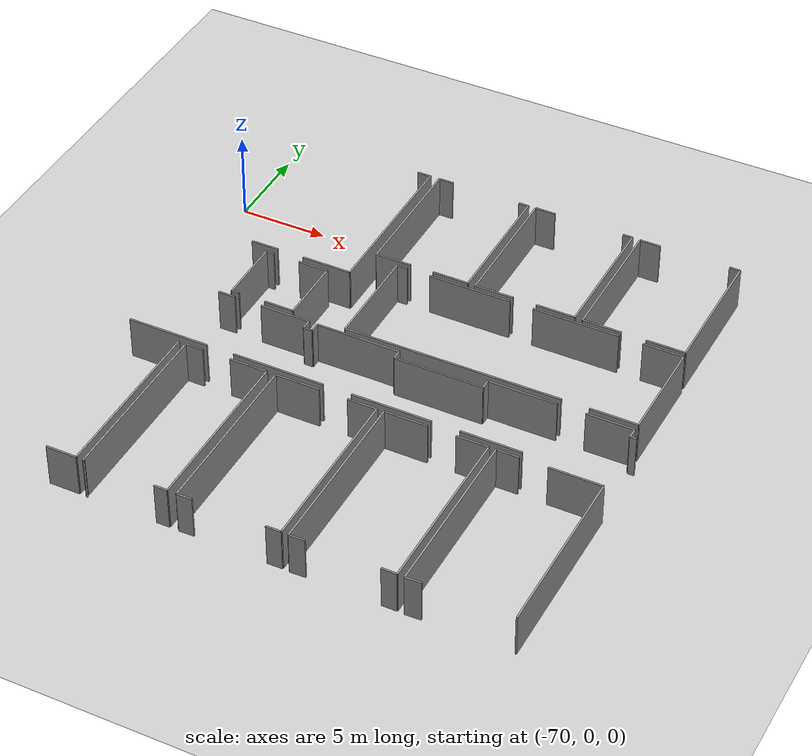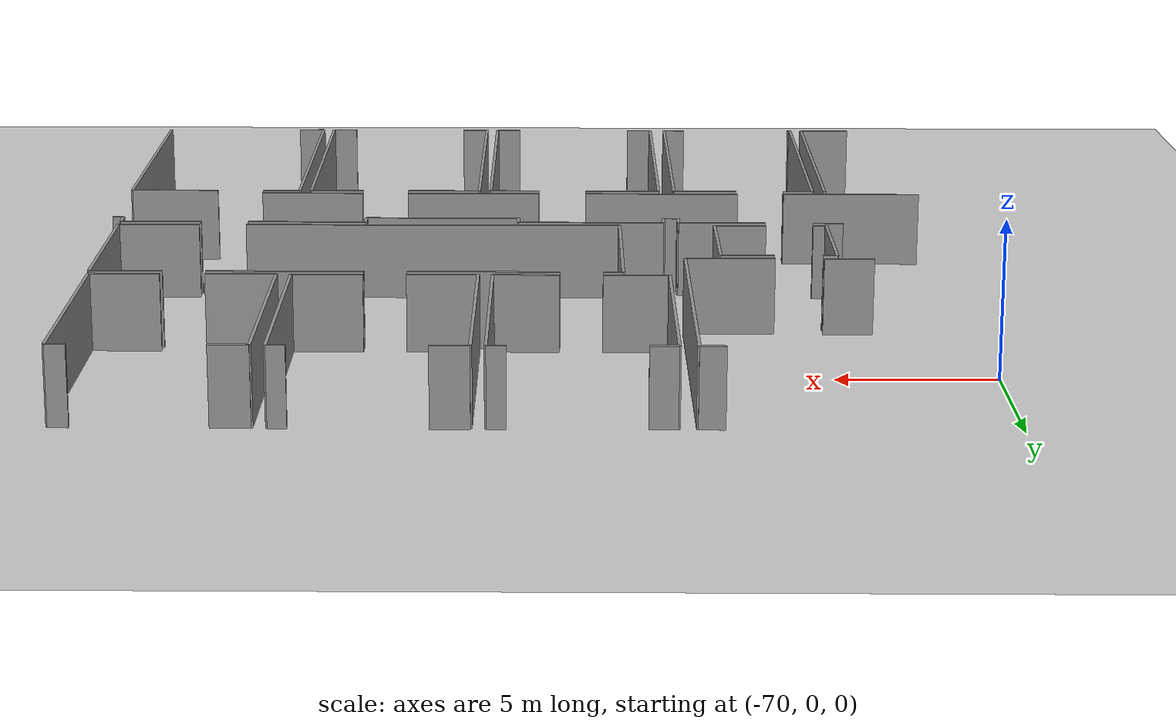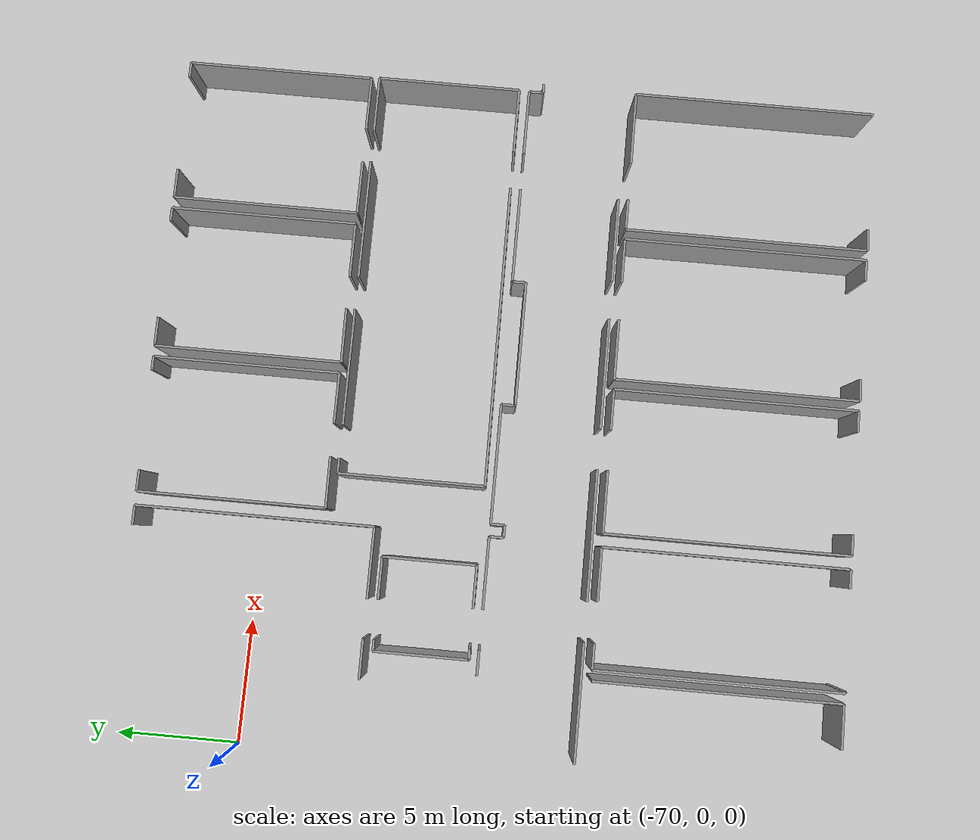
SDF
<sdf version="1.6">
 <world name="default">
  <model name="ground_plane">
   <static>1</static>
   <link name="link">
    <collision name="collision">
     <geometry><plane><normal>0 0 1</normal><size>100 100</size></plane></geometry>
     <surface><friction><ode><mu>100</mu><mu2>50</mu2></ode></friction></surface>
    </collision>
    <visual name="visual">
     <cast_shadows>0</cast_shadows>
     <geometry><plane><normal>0 0 1</normal><size>100 100</size></plane></geometry>
     <material>
      <script><uri>file://media/materials/scripts/gazebo.material</uri><name>Gazebo/Grey</name></script>
     </material>
    </visual>
   </link>
  </model>
  <model name="0510035341_A_40_1_103">
   <static>1</static>
   <link name="Wall_53">
    <collision name="Wall_53_Collision">
     <geometry><box><size>0.790552980763 0.1 2.5</size></box></geometry>
     <pose>0.395276490382 0 1.25 0 0 0</pose>
    </collision>
    <visual name="Wall_53_Visual">
     <pose>0.395276490382 0 1.25 0 0 0</pose>
     <geometry><box><size>0.790552980763 0.1 2.5</size></box></geometry>
     <material>
      <script><uri>file://media/materials/scripts/gazebo.material</uri><name>Gazebo/Grey</name></script>
      <ambient>1 1 1 1</ambient>
     </material>
    </visual>
    <pose>51.4413053139 -19.3100120627 0 0 0 0.0</pose>
   </link>
   <link name="Wall_54">
    <collision name="Wall_54_Collision">
     <geometry><box><size>9.67024315916 0.1 2.5</size></box></geometry>
     <pose>4.83512157958 0 1.25 0 0 0</pose>
    </collision>
    <visual name="Wall_54_Visual">
     <pose>4.83512157958 0 1.25 0 0 0</pose>
     <geometry><box><size>9.67024315916 0.1 2.5</size></box></geometry>
     <material>
      <script><uri>file://media/materials/scripts/gazebo.material</uri><name>Gazebo/Grey</name></script>
      <ambient>1 1 1 1</ambient>
     </material>
    </visual>
    <pose>52.2318582947 -19.3100120627 0 0 0 -1.57079632679</pose>
   </link>
   <link name="Wall_55">
    <collision name="Wall_55_Collision">
     <geometry><box><size>2.86534188306 0.1 2.5</size></box></geometry>
     <pose>1.43267094153 0 1.25 0 0 0</pose>
    </collision>
    <visual name="Wall_55_Visual">
     <pose>1.43267094153 0 1.25 0 0 0</pose>
     <geometry><box><size>2.86534188306 0.1 2.5</size></box></geometry>
     <material>
      <script><uri>file://media/materials/scripts/gazebo.material</uri><name>Gazebo/Grey</name></script>
      <ambient>1 1 1 1</ambient>
     </material>
    </visual>
    <pose>52.2318582947 -28.9802552219 0 0 0 3.14159265359</pose>
   </link>
   <link name="Wall_56">
    <collision name="Wall_56_Collision">
     <geometry><box><size>1.5940782343 0.1 2.5</size></box></geometry>
     <pose>0.797039117148 0 1.25 0 0 0</pose>
    </collision>
    <visual name="Wall_56_Visual">
     <pose>0.797039117148 0 1.25 0 0 0</pose>
     <geometry><box><size>1.5940782343 0.1 2.5</size></box></geometry>
     <material>
      <script><uri>file://media/materials/scripts/gazebo.material</uri><name>Gazebo/Grey</name></script>
      <ambient>1 1 1 1</ambient>
     </material>
    </visual>
    <pose>47.8151228493 -28.9802552219 0 0 0 -3.13649472101</pose>
   </link>
   <link name="Wall_66">
    <collision name="Wall_66_Collision">
     <geometry><box><size>3.81867817916 0.1 2.5</size></box></geometry>
     <pose>1.90933908958 0 1.25 0 0 0</pose>
    </collision>
    <visual name="Wall_66_Visual">
     <pose>1.90933908958 0 1.25 0 0 0</pose>
     <geometry><box><size>3.81867817916 0.1 2.5</size></box></geometry>
     <material>
      <script><uri>file://media/materials/scripts/gazebo.material</uri><name>Gazebo/Grey</name></script>
      <ambient>1 1 1 1</ambient>
     </material>
    </visual>
    <pose>47.3635959622 -33.234461304 0 0 0 1.57079632679</pose>
   </link>
   <link name="Wall_67">
    <collision name="Wall_67_Collision">
     <geometry><box><size>0.450257126532 0.1 2.5</size></box></geometry>
     <pose>0.225128563266 0 1.25 0 0 0</pose>
    </collision>
    <visual name="Wall_67_Visual">
     <pose>0.225128563266 0 1.25 0 0 0</pose>
     <geometry><box><size>0.450257126532 0.1 2.5</size></box></geometry>
     <material>
      <script><uri>file://media/materials/scripts/gazebo.material</uri><name>Gazebo/Grey</name></script>
      <ambient>1 1 1 1</ambient>
     </material>
    </visual>
    <pose>47.3635959622 -29.4157831249 0 0 0 0.0</pose>
   </link>
   <link name="Wall_68">
    <collision name="Wall_68_Collision">
     <geometry><box><size>1.70884388293 0.1 2.5</size></box></geometry>
     <pose>0.854421941464 0 1.25 0 0 0</pose>
    </collision>
    <visual name="Wall_68_Visual">
     <pose>0.854421941464 0 1.25 0 0 0</pose>
     <geometry><box><size>1.70884388293 0.1 2.5</size></box></geometry>
     <material>
      <script><uri>file://media/materials/scripts/gazebo.material</uri><name>Gazebo/Grey</name></script>
      <ambient>1 1 1 1</ambient>
     </material>
    </visual>
    <pose>49.3703256936 -29.4157831249 0 0 0 0.0</pose>
   </link>
   <link name="Wall_69">
    <collision name="Wall_69_Collision">
     <geometry><box><size>3.79455272681 0.1 2.5</size></box></geometry>
     <pose>1.89727636341 0 1.25 0 0 0</pose>
    </collision>
    <visual name="Wall_69_Visual">
     <pose>1.89727636341 0 1.25 0 0 0</pose>
     <geometry><box><size>3.79455272681 0.1 2.5</size></box></geometry>
     <material>
      <script><uri>file://media/materials/scripts/gazebo.material</uri><name>Gazebo/Grey</name></script>
      <ambient>1 1 1 1</ambient>
     </material>
    </visual>
    <pose>51.0791695765 -29.4157831249 0 0 0 -1.57079632679</pose>
   </link>
   <link name="Wall_70">
    <collision name="Wall_70_Collision">
     <geometry><box><size>1.70884388293 0.1 2.5</size></box></geometry>
     <pose>0.854421941464 0 1.25 0 0 0</pose>
    </collision>
    <visual name="Wall_70_Visual">
     <pose>0.854421941464 0 1.25 0 0 0</pose>
     <geometry><box><size>1.70884388293 0.1 2.5</size></box></geometry>
     <material>
      <script><uri>file://media/materials/scripts/gazebo.material</uri><name>Gazebo/Grey</name></script>
      <ambient>1 1 1 1</ambient>
     </material>
    </visual>
    <pose>51.0791695765 -33.2103358517 0 0 0 3.14159265359</pose>
   </link>
   <link name="Wall_71">
    <collision name="Wall_71_Collision">
     <geometry><box><size>0.443041963091 0.1 2.5</size></box></geometry>
     <pose>0.221520981545 0 1.25 0 0 0</pose>
    </collision>
    <visual name="Wall_71_Visual">
     <pose>0.221520981545 0 1.25 0 0 0</pose>
     <geometry><box><size>0.443041963091 0.1 2.5</size></box></geometry>
     <material>
      <script><uri>file://media/materials/scripts/gazebo.material</uri><name>Gazebo/Grey</name></script>
      <ambient>1 1 1 1</ambient>
     </material>
    </visual>
    <pose>47.8059805727 -33.2103358517 0 0 0 -3.08711160372</pose>
   </link>
   <link name="Wall_72">
    <collision name="Wall_72_Collision">
     <geometry><box><size>7.64649863501 0.1 2.5</size></box></geometry>
     <pose>3.8232493175 0 1.25 0 0 0</pose>
    </collision>
    <visual name="Wall_72_Visual">
     <pose>3.8232493175 0 1.25 0 0 0</pose>
     <geometry><box><size>7.64649863501 0.1 2.5</size></box></geometry>
     <material>
      <script><uri>file://media/materials/scripts/gazebo.material</uri><name>Gazebo/Grey</name></script>
      <ambient>1 1 1 1</ambient>
     </material>
    </visual>
    <pose>52.7918227414 -26.949146086 0 0 0 1.57079632679</pose>
   </link>
   <link name="Wall_73">
    <collision name="Wall_73_Collision">
     <geometry><box><size>0.85988191226 0.1 2.5</size></box></geometry>
     <pose>0.42994095613 0 1.25 0 0 0</pose>
    </collision>
    <visual name="Wall_73_Visual">
     <pose>0.42994095613 0 1.25 0 0 0</pose>
     <geometry><box><size>0.85988191226 0.1 2.5</size></box></geometry>
     <material>
      <script><uri>file://media/materials/scripts/gazebo.material</uri><name>Gazebo/Grey</name></script>
      <ambient>1 1 1 1</ambient>
     </material>
    </visual>
    <pose>52.7918227414 -19.302647451 0 0 0 0.0</pose>
   </link>
   <link name="Wall_74">
    <collision name="Wall_74_Collision">
     <geometry><box><size>0.572916005333 0.1 2.5</size></box></geometry>
     <pose>0.286458002666 0 1.25 0 0 0</pose>
    </collision>
    <visual name="Wall_74_Visual">
     <pose>0.286458002666 0 1.25 0 0 0</pose>
     <geometry><box><size>0.572916005333 0.1 2.5</size></box></geometry>
     <material>
      <script><uri>file://media/materials/scripts/gazebo.material</uri><name>Gazebo/Grey</name></script>
      <ambient>1 1 1 1</ambient>
     </material>
    </visual>
    <pose>57.7276363405 -19.302647451 0 0 0 0.0</pose>
   </link>
   <link name="Wall_75">
    <collision name="Wall_75_Collision">
     <geometry><box><size>7.6244047997 0.1 2.5</size></box></geometry>
     <pose>3.81220239985 0 1.25 0 0 0</pose>
    </collision>
    <visual name="Wall_75_Visual">
     <pose>3.81220239985 0 1.25 0 0 0</pose>
     <geometry><box><size>7.6244047997 0.1 2.5</size></box></geometry>
     <material>
      <script><uri>file://media/materials/scripts/gazebo.material</uri><name>Gazebo/Grey</name></script>
      <ambient>1 1 1 1</ambient>
     </material>
    </visual>
    <pose>58.3005523459 -19.302647451 0 0 0 -1.57079632679</pose>
   </link>
   <link name="Wall_76">
    <collision name="Wall_76_Collision">
     <geometry><box><size>2.08316932258 0.1 2.5</size></box></geometry>
     <pose>1.04158466129 0 1.25 0 0 0</pose>
    </collision>
    <visual name="Wall_76_Visual">
     <pose>1.04158466129 0 1.25 0 0 0</pose>
     <geometry><box><size>2.08316932258 0.1 2.5</size></box></geometry>
     <material>
      <script><uri>file://media/materials/scripts/gazebo.material</uri><name>Gazebo/Grey</name></script>
      <ambient>1 1 1 1</ambient>
     </material>
    </visual>
    <pose>58.3005523459 -26.9270522507 0 0 0 3.14159265359</pose>
   </link>
   <link name="Wall_77">
    <collision name="Wall_77_Collision">
     <geometry><box><size>2.07516047217 0.1 2.5</size></box></geometry>
     <pose>1.03758023608 0 1.25 0 0 0</pose>
    </collision>
    <visual name="Wall_77_Visual">
     <pose>1.03758023608 0 1.25 0 0 0</pose>
     <geometry><box><size>2.07516047217 0.1 2.5</size></box></geometry>
     <material>
      <script><uri>file://media/materials/scripts/gazebo.material</uri><name>Gazebo/Grey</name></script>
      <ambient>1 1 1 1</ambient>
     </material>
    </visual>
    <pose>54.8668655958 -26.9270522507 0 0 0 -3.13094564434</pose>
   </link>
   <link name="Wall_78">
    <collision name="Wall_78_Collision">
     <geometry><box><size>7.66884642245 0.1 2.5</size></box></geometry>
     <pose>3.83442321122 0 1.25 0 0 0</pose>
    </collision>
    <visual name="Wall_78_Visual">
     <pose>3.83442321122 0 1.25 0 0 0</pose>
     <geometry><box><size>7.66884642245 0.1 2.5</size></box></geometry>
     <material>
      <script><uri>file://media/materials/scripts/gazebo.material</uri><name>Gazebo/Grey</name></script>
      <ambient>1 1 1 1</ambient>
     </material>
    </visual>
    <pose>58.7467462383 -26.9547330328 0 0 0 1.57079632679</pose>
   </link>
   <link name="Wall_79">
    <collision name="Wall_79_Collision">
     <geometry><box><size>1.18138530887 0.1 2.5</size></box></geometry>
     <pose>0.590692654435 0 1.25 0 0 0</pose>
    </collision>
    <visual name="Wall_79_Visual">
     <pose>0.590692654435 0 1.25 0 0 0</pose>
     <geometry><box><size>1.18138530887 0.1 2.5</size></box></geometry>
     <material>
      <script><uri>file://media/materials/scripts/gazebo.material</uri><name>Gazebo/Grey</name></script>
      <ambient>1 1 1 1</ambient>
     </material>
    </visual>
    <pose>58.7467462383 -19.2858866104 0 0 0 0.0</pose>
   </link>
   <link name="Wall_80">
    <collision name="Wall_80_Collision">
     <geometry><box><size>0.570884388293 0.1 2.5</size></box></geometry>
     <pose>0.285442194146 0 1.25 0 0 0</pose>
    </collision>
    <visual name="Wall_80_Visual">
     <pose>0.285442194146 0 1.25 0 0 0</pose>
     <geometry><box><size>0.570884388293 0.1 2.5</size></box></geometry>
     <material>
      <script><uri>file://media/materials/scripts/gazebo.material</uri><name>Gazebo/Grey</name></script>
      <ambient>1 1 1 1</ambient>
     </material>
    </visual>
    <pose>64.0015237128 -19.2858866104 0 0 0 0.0</pose>
   </link>
   <link name="Wall_81">
    <collision name="Wall_81_Collision">
     <geometry><box><size>7.64116564028 0.1 2.5</size></box></geometry>
     <pose>3.82058282014 0 1.25 0 0 0</pose>
    </collision>
    <visual name="Wall_81_Visual">
     <pose>3.82058282014 0 1.25 0 0 0</pose>
     <geometry><box><size>7.64116564028 0.1 2.5</size></box></geometry>
     <material>
      <script><uri>file://media/materials/scripts/gazebo.material</uri><name>Gazebo/Grey</name></script>
      <ambient>1 1 1 1</ambient>
     </material>
    </visual>
    <pose>64.5724081011 -19.2858866104 0 0 0 -1.57079632679</pose>
   </link>
   <link name="Wall_82">
    <collision name="Wall_82_Collision">
     <geometry><box><size>2.23985778681 0.1 2.5</size></box></geometry>
     <pose>1.1199288934 0 1.25 0 0 0</pose>
    </collision>
    <visual name="Wall_82_Visual">
     <pose>1.1199288934 0 1.25 0 0 0</pose>
     <geometry><box><size>2.23985778681 0.1 2.5</size></box></geometry>
     <material>
      <script><uri>file://media/materials/scripts/gazebo.material</uri><name>Gazebo/Grey</name></script>
      <ambient>1 1 1 1</ambient>
     </material>
    </visual>
    <pose>64.5724081011 -26.9270522507 0 0 0 3.14159265359</pose>
   </link>
   <link name="Wall_83">
    <collision name="Wall_83_Collision">
     <geometry><box><size>2.23672769842 0.1 2.5</size></box></geometry>
     <pose>1.11836384921 0 1.25 0 0 0</pose>
    </collision>
    <visual name="Wall_83_Visual">
     <pose>1.11836384921 0 1.25 0 0 0</pose>
     <geometry><box><size>2.23672769842 0.1 2.5</size></box></geometry>
     <material>
      <script><uri>file://media/materials/scripts/gazebo.material</uri><name>Gazebo/Grey</name></script>
      <ambient>1 1 1 1</ambient>
     </material>
    </visual>
    <pose>60.9833026475 -26.9270522507 0 0 0 -3.12921676679</pose>
   </link>
   <link name="Wall_84">
    <collision name="Wall_84_Collision">
     <geometry><box><size>5.96482762999 0.1 2.5</size></box></geometry>
     <pose>2.982413815 0 1.25 0 0 0</pose>
    </collision>
    <visual name="Wall_84_Visual">
     <pose>2.982413815 0 1.25 0 0 0</pose>
     <geometry><box><size>5.96482762999 0.1 2.5</size></box></geometry>
     <material>
      <script><uri>file://media/materials/scripts/gazebo.material</uri><name>Gazebo/Grey</name></script>
      <ambient>1 1 1 1</ambient>
     </material>
    </visual>
    <pose>54.2314773665 -33.2489365755 0 0 0 1.57079632679</pose>
   </link>
   <link name="Wall_85">
    <collision name="Wall_85_Collision">
     <geometry><box><size>0.616087867437 0.1 2.5</size></box></geometry>
     <pose>0.308043933718 0 1.25 0 0 0</pose>
    </collision>
    <visual name="Wall_85_Visual">
     <pose>0.308043933718 0 1.25 0 0 0</pose>
     <geometry><box><size>0.616087867437 0.1 2.5</size></box></geometry>
     <material>
      <script><uri>file://media/materials/scripts/gazebo.material</uri><name>Gazebo/Grey</name></script>
      <ambient>1 1 1 1</ambient>
     </material>
    </visual>
    <pose>54.2314773665 -27.2841089455 0 0 0 0.0</pose>
   </link>
   <link name="Wall_86">
    <collision name="Wall_86_Collision">
     <geometry><box><size>4.77277633166 0.1 2.5</size></box></geometry>
     <pose>2.38638816583 0 1.25 0 0 0</pose>
    </collision>
    <visual name="Wall_86_Visual">
     <pose>2.38638816583 0 1.25 0 0 0</pose>
     <geometry><box><size>4.77277633166 0.1 2.5</size></box></geometry>
     <material>
      <script><uri>file://media/materials/scripts/gazebo.material</uri><name>Gazebo/Grey</name></script>
      <ambient>1 1 1 1</ambient>
     </material>
    </visual>
    <pose>56.1985905657 -27.2841089455 0 0 0 0.0</pose>
   </link>
   <link name="Wall_87">
    <collision name="Wall_87_Collision">
     <geometry><box><size>4.94774934925 0.1 2.5</size></box></geometry>
     <pose>2.47387467462 0 1.25 0 0 0</pose>
    </collision>
    <visual name="Wall_87_Visual">
     <pose>2.47387467462 0 1.25 0 0 0</pose>
     <geometry><box><size>4.94774934925 0.1 2.5</size></box></geometry>
     <material>
      <script><uri>file://media/materials/scripts/gazebo.material</uri><name>Gazebo/Grey</name></script>
      <ambient>1 1 1 1</ambient>
     </material>
    </visual>
    <pose>62.3226461812 -27.2841089455 0 0 0 0.0</pose>
   </link>
   <link name="Wall_88">
    <collision name="Wall_88_Collision">
     <geometry><box><size>2.29801282458 0.1 2.5</size></box></geometry>
     <pose>1.14900641229 0 1.25 0 0 0</pose>
    </collision>
    <visual name="Wall_88_Visual">
     <pose>1.14900641229 0 1.25 0 0 0</pose>
     <geometry><box><size>2.29801282458 0.1 2.5</size></box></geometry>
     <material>
      <script><uri>file://media/materials/scripts/gazebo.material</uri><name>Gazebo/Grey</name></script>
      <ambient>1 1 1 1</ambient>
     </material>
    </visual>
    <pose>68.6224366707 -27.2841089455 0 0 0 0.0</pose>
   </link>
   <link name="Wall_89">
    <collision name="Wall_89_Collision">
     <geometry><box><size>5.90540283157 0.1 2.5</size></box></geometry>
     <pose>2.95270141578 0 1.25 0 0 0</pose>
    </collision>
    <visual name="Wall_89_Visual">
     <pose>2.95270141578 0 1.25 0 0 0</pose>
     <geometry><box><size>5.90540283157 0.1 2.5</size></box></geometry>
     <material>
      <script><uri>file://media/materials/scripts/gazebo.material</uri><name>Gazebo/Grey</name></script>
      <ambient>1 1 1 1</ambient>
     </material>
    </visual>
    <pose>70.9204494953 -27.2841089455 0 0 0 -1.57079632679</pose>
   </link>
   <link name="Wall_90">
    <collision name="Wall_90_Collision">
     <geometry><box><size>2.70205066345 0.1 2.5</size></box></geometry>
     <pose>1.35102533172 0 1.25 0 0 0</pose>
    </collision>
    <visual name="Wall_90_Visual">
     <pose>1.35102533172 0 1.25 0 0 0</pose>
     <geometry><box><size>2.70205066345 0.1 2.5</size></box></geometry>
     <material>
      <script><uri>file://media/materials/scripts/gazebo.material</uri><name>Gazebo/Grey</name></script>
      <ambient>1 1 1 1</ambient>
     </material>
    </visual>
    <pose>70.9204494953 -33.189511777 0 0 0 3.14159265359</pose>
   </link>
   <link name="Wall_91">
    <collision name="Wall_91_Collision">
     <geometry><box><size>12.4290672068 0.1 2.5</size></box></geometry>
     <pose>6.21453360341 0 1.25 0 0 0</pose>
    </collision>
    <visual name="Wall_91_Visual">
     <pose>6.21453360341 0 1.25 0 0 0</pose>
     <geometry><box><size>12.4290672068 0.1 2.5</size></box></geometry>
     <material>
      <script><uri>file://media/materials/scripts/gazebo.material</uri><name>Gazebo/Grey</name></script>
      <ambient>1 1 1 1</ambient>
     </material>
    </visual>
    <pose>66.6604025141 -33.189511777 0 0 0 -3.13681152047</pose>
   </link>
   <link name="Wall_92">
    <collision name="Wall_92_Collision">
     <geometry><box><size>7.63532474129 0.1 2.5</size></box></geometry>
     <pose>3.81766237064 0 1.25 0 0 0</pose>
    </collision>
    <visual name="Wall_92_Visual">
     <pose>3.81766237064 0 1.25 0 0 0</pose>
     <geometry><box><size>7.63532474129 0.1 2.5</size></box></geometry>
     <material>
      <script><uri>file://media/materials/scripts/gazebo.material</uri><name>Gazebo/Grey</name></script>
      <ambient>1 1 1 1</ambient>
     </material>
    </visual>
    <pose>65.0287600787 -26.945336804 0 0 0 1.57079632679</pose>
   </link>
   <link name="Wall_93">
    <collision name="Wall_93_Collision">
     <geometry><box><size>1.20754237826 0.1 2.5</size></box></geometry>
     <pose>0.603771189131 0 1.25 0 0 0</pose>
    </collision>
    <visual name="Wall_93_Visual">
     <pose>0.603771189131 0 1.25 0 0 0</pose>
     <geometry><box><size>1.20754237826 0.1 2.5</size></box></geometry>
     <material>
      <script><uri>file://media/materials/scripts/gazebo.material</uri><name>Gazebo/Grey</name></script>
      <ambient>1 1 1 1</ambient>
     </material>
    </visual>
    <pose>65.0287600787 -19.3100120627 0 0 0 0.0</pose>
   </link>
   <link name="Wall_94">
    <collision name="Wall_94_Collision">
     <geometry><box><size>0.618627388737 0.1 2.5</size></box></geometry>
     <pose>0.309313694369 0 1.25 0 0 0</pose>
    </collision>
    <visual name="Wall_94_Visual">
     <pose>0.309313694369 0 1.25 0 0 0</pose>
     <geometry><box><size>0.618627388737 0.1 2.5</size></box></geometry>
     <material>
      <script><uri>file://media/materials/scripts/gazebo.material</uri><name>Gazebo/Grey</name></script>
      <ambient>1 1 1 1</ambient>
     </material>
    </visual>
    <pose>70.2639832392 -19.3100120627 0 0 0 0.0</pose>
   </link>
   <link name="Wall_95">
    <collision name="Wall_95_Collision">
     <geometry><box><size>7.64243540093 0.1 2.5</size></box></geometry>
     <pose>3.82121770046 0 1.25 0 0 0</pose>
    </collision>
    <visual name="Wall_95_Visual">
     <pose>3.82121770046 0 1.25 0 0 0</pose>
     <geometry><box><size>7.64243540093 0.1 2.5</size></box></geometry>
     <material>
      <script><uri>file://media/materials/scripts/gazebo.material</uri><name>Gazebo/Grey</name></script>
      <ambient>1 1 1 1</ambient>
     </material>
    </visual>
    <pose>70.8826106279 -19.3100120627 0 0 0 -1.57079632679</pose>
   </link>
   <link name="Wall_96">
    <collision name="Wall_96_Collision">
     <geometry><box><size>2.22208113771 0.1 2.5</size></box></geometry>
     <pose>1.11104056885 0 1.25 0 0 0</pose>
    </collision>
    <visual name="Wall_96_Visual">
     <pose>1.11104056885 0 1.25 0 0 0</pose>
     <geometry><box><size>2.22208113771 0.1 2.5</size></box></geometry>
     <material>
      <script><uri>file://media/materials/scripts/gazebo.material</uri><name>Gazebo/Grey</name></script>
      <ambient>1 1 1 1</ambient>
     </material>
    </visual>
    <pose>70.8826106279 -26.9524474637 0 0 0 3.14159265359</pose>
   </link>
   <link name="Wall_97">
    <collision name="Wall_97_Collision">
     <geometry><box><size>2.22691758055 0.1 2.5</size></box></geometry>
     <pose>1.11345879028 0 1.25 0 0 0</pose>
    </collision>
    <visual name="Wall_97_Visual">
     <pose>1.11345879028 0 1.25 0 0 0</pose>
     <geometry><box><size>2.22691758055 0.1 2.5</size></box></geometry>
     <material>
      <script><uri>file://media/materials/scripts/gazebo.material</uri><name>Gazebo/Grey</name></script>
      <ambient>1 1 1 1</ambient>
     </material>
    </visual>
    <pose>67.2556663069 -26.9524474637 0 0 0 3.13839959796</pose>
   </link>
   <link name="Wall_263">
    <collision name="Wall_263_Collision">
     <geometry><box><size>1.00209510507 0.1 2.5</size></box></geometry>
     <pose>0.501047552536 0 1.25 0 0 0</pose>
    </collision>
    <visual name="Wall_263_Visual">
     <pose>0.501047552536 0 1.25 0 0 0</pose>
     <geometry><box><size>1.00209510507 0.1 2.5</size></box></geometry>
     <material>
      <script><uri>file://media/materials/scripts/gazebo.material</uri><name>Gazebo/Grey</name></script>
      <ambient>1 1 1 1</ambient>
     </material>
    </visual>
    <pose>46.7769665418 -33.5958351851 0 0 0 0.0</pose>
   </link>
   <link name="Wall_264">
    <collision name="Wall_264_Collision">
     <geometry><box><size>2.89759380357 0.1 2.5</size></box></geometry>
     <pose>1.44879690178 0 1.25 0 0 0</pose>
    </collision>
    <visual name="Wall_264_Visual">
     <pose>1.44879690178 0 1.25 0 0 0</pose>
     <geometry><box><size>2.89759380357 0.1 2.5</size></box></geometry>
     <material>
      <script><uri>file://media/materials/scripts/gazebo.material</uri><name>Gazebo/Grey</name></script>
      <ambient>1 1 1 1</ambient>
     </material>
    </visual>
    <pose>49.3586438956 -33.5958351851 0 0 0 0.0</pose>
   </link>
   <link name="Wall_265">
    <collision name="Wall_265_Collision">
     <geometry><box><size>0.578502952194 0.1 2.5</size></box></geometry>
     <pose>0.289251476097 0 1.25 0 0 0</pose>
    </collision>
    <visual name="Wall_265_Visual">
     <pose>0.289251476097 0 1.25 0 0 0</pose>
     <geometry><box><size>0.578502952194 0.1 2.5</size></box></geometry>
     <material>
      <script><uri>file://media/materials/scripts/gazebo.material</uri><name>Gazebo/Grey</name></script>
      <ambient>1 1 1 1</ambient>
     </material>
    </visual>
    <pose>52.2562376992 -33.5958351851 0 0 0 -1.57079632679</pose>
   </link>
   <link name="Wall_266">
    <collision name="Wall_266_Collision">
     <geometry><box><size>0.498000126976 0.1 2.5</size></box></geometry>
     <pose>0.249000063488 0 1.25 0 0 0</pose>
    </collision>
    <visual name="Wall_266_Visual">
     <pose>0.249000063488 0 1.25 0 0 0</pose>
     <geometry><box><size>0.498000126976 0.1 2.5</size></box></geometry>
     <material>
      <script><uri>file://media/materials/scripts/gazebo.material</uri><name>Gazebo/Grey</name></script>
      <ambient>1 1 1 1</ambient>
     </material>
    </visual>
    <pose>52.2562376992 -34.1743381373 0 0 0 0.0</pose>
   </link>
   <link name="Wall_267">
    <collision name="Wall_267_Collision">
     <geometry><box><size>0.563011872262 0.1 2.5</size></box></geometry>
     <pose>0.281505936131 0 1.25 0 0 0</pose>
    </collision>
    <visual name="Wall_267_Visual">
     <pose>0.281505936131 0 1.25 0 0 0</pose>
     <geometry><box><size>0.563011872262 0.1 2.5</size></box></geometry>
     <material>
      <script><uri>file://media/materials/scripts/gazebo.material</uri><name>Gazebo/Grey</name></script>
      <ambient>1 1 1 1</ambient>
     </material>
    </visual>
    <pose>52.7542378262 -34.1743381373 0 0 0 1.57079632679</pose>
   </link>
   <link name="Wall_268">
    <collision name="Wall_268_Collision">
     <geometry><box><size>4.84591454511 0.1 2.5</size></box></geometry>
     <pose>2.42295727255 0 1.25 0 0 0</pose>
    </collision>
    <visual name="Wall_268_Visual">
     <pose>2.42295727255 0 1.25 0 0 0</pose>
     <geometry><box><size>4.84591454511 0.1 2.5</size></box></geometry>
     <material>
      <script><uri>file://media/materials/scripts/gazebo.material</uri><name>Gazebo/Grey</name></script>
      <ambient>1 1 1 1</ambient>
     </material>
    </visual>
    <pose>52.7542378262 -33.611326265 0 0 0 0.0</pose>
   </link>
   <link name="Wall_269">
    <collision name="Wall_269_Collision">
     <geometry><box><size>0.566821154212 0.1 2.5</size></box></geometry>
     <pose>0.283410577106 0 1.25 0 0 0</pose>
    </collision>
    <visual name="Wall_269_Visual">
     <pose>0.283410577106 0 1.25 0 0 0</pose>
     <geometry><box><size>0.566821154212 0.1 2.5</size></box></geometry>
     <material>
      <script><uri>file://media/materials/scripts/gazebo.material</uri><name>Gazebo/Grey</name></script>
      <ambient>1 1 1 1</ambient>
     </material>
    </visual>
    <pose>57.6001523713 -33.611326265 0 0 0 -1.57079632679</pose>
   </link>
   <link name="Wall_270">
    <collision name="Wall_270_Collision">
     <geometry><box><size>5.11104056885 0.1 2.5</size></box></geometry>
     <pose>2.55552028443 0 1.25 0 0 0</pose>
    </collision>
    <visual name="Wall_270_Visual">
     <pose>2.55552028443 0 1.25 0 0 0</pose>
     <geometry><box><size>5.11104056885 0.1 2.5</size></box></geometry>
     <material>
      <script><uri>file://media/materials/scripts/gazebo.material</uri><name>Gazebo/Grey</name></script>
      <ambient>1 1 1 1</ambient>
     </material>
    </visual>
    <pose>57.6001523713 -34.1781474192 0 0 0 0.0</pose>
   </link>
   <link name="Wall_271">
    <collision name="Wall_271_Collision">
     <geometry><box><size>0.566313249952 0.1 2.5</size></box></geometry>
     <pose>0.283156624976 0 1.25 0 0 0</pose>
    </collision>
    <visual name="Wall_271_Visual">
     <pose>0.283156624976 0 1.25 0 0 0</pose>
     <geometry><box><size>0.566313249952 0.1 2.5</size></box></geometry>
     <material>
      <script><uri>file://media/materials/scripts/gazebo.material</uri><name>Gazebo/Grey</name></script>
      <ambient>1 1 1 1</ambient>
     </material>
    </visual>
    <pose>62.7111929401 -34.1781474192 0 0 0 1.57079632679</pose>
   </link>
   <link name="Wall_272">
    <collision name="Wall_272_Collision">
     <geometry><box><size>3.92025903117 0.1 2.5</size></box></geometry>
     <pose>1.96012951559 0 1.25 0 0 0</pose>
    </collision>
    <visual name="Wall_272_Visual">
     <pose>1.96012951559 0 1.25 0 0 0</pose>
     <geometry><box><size>3.92025903117 0.1 2.5</size></box></geometry>
     <material>
      <script><uri>file://media/materials/scripts/gazebo.material</uri><name>Gazebo/Grey</name></script>
      <ambient>1 1 1 1</ambient>
     </material>
    </visual>
    <pose>62.7111929401 -33.6118341693 0 0 0 0.0</pose>
   </link>
   <link name="Wall_273">
    <collision name="Wall_273_Collision">
     <geometry><box><size>2.68935305695 0.1 2.5</size></box></geometry>
     <pose>1.34467652847 0 1.25 0 0 0</pose>
    </collision>
    <visual name="Wall_273_Visual">
     <pose>1.34467652847 0 1.25 0 0 0</pose>
     <geometry><box><size>2.68935305695 0.1 2.5</size></box></geometry>
     <material>
      <script><uri>file://media/materials/scripts/gazebo.material</uri><name>Gazebo/Grey</name></script>
      <ambient>1 1 1 1</ambient>
     </material>
    </visual>
    <pose>68.2059551774 -33.6118341693 0 0 0 0.0</pose>
   </link>
   <link name="Wall_274">
    <collision name="Wall_274_Collision">
     <geometry><box><size>0.587899181004 0.1 2.5</size></box></geometry>
     <pose>0.293949590502 0 1.25 0 0 0</pose>
    </collision>
    <visual name="Wall_274_Visual">
     <pose>0.293949590502 0 1.25 0 0 0</pose>
     <geometry><box><size>0.587899181004 0.1 2.5</size></box></geometry>
     <material>
      <script><uri>file://media/materials/scripts/gazebo.material</uri><name>Gazebo/Grey</name></script>
      <ambient>1 1 1 1</ambient>
     </material>
    </visual>
    <pose>70.8953082344 -33.6118341693 0 0 0 -1.57079632679</pose>
   </link>
   <link name="Wall_275">
    <collision name="Wall_275_Collision">
     <geometry><box><size>0.365691067234 0.1 2.5</size></box></geometry>
     <pose>0.182845533617 0 1.25 0 0 0</pose>
    </collision>
    <visual name="Wall_275_Visual">
     <pose>0.182845533617 0 1.25 0 0 0</pose>
     <geometry><box><size>0.365691067234 0.1 2.5</size></box></geometry>
     <material>
      <script><uri>file://media/materials/scripts/gazebo.material</uri><name>Gazebo/Grey</name></script>
      <ambient>1 1 1 1</ambient>
     </material>
    </visual>
    <pose>70.8953082344 -34.1997333503 0 0 0 0.0</pose>
   </link>
   <link name="Wall_277">
    <collision name="Wall_277_Collision">
     <geometry><box><size>3.48015998984 0.1 2.5</size></box></geometry>
     <pose>1.74007999492 0 1.25 0 0 0</pose>
    </collision>
    <visual name="Wall_277_Visual">
     <pose>1.74007999492 0 1.25 0 0 0</pose>
     <geometry><box><size>3.48015998984 0.1 2.5</size></box></geometry>
     <material>
      <script><uri>file://media/materials/scripts/gazebo.material</uri><name>Gazebo/Grey</name></script>
      <ambient>1 1 1 1</ambient>
     </material>
    </visual>
    <pose>66.5814234017 -37.6971620849 0 0 0 3.14159265359</pose>
   </link>
   <link name="Wall_278">
    <collision name="Wall_278_Collision">
     <geometry><box><size>4.55386959558 0.1 2.5</size></box></geometry>
     <pose>2.27693479779 0 1.25 0 0 0</pose>
    </collision>
    <visual name="Wall_278_Visual">
     <pose>2.27693479779 0 1.25 0 0 0</pose>
     <geometry><box><size>4.55386959558 0.1 2.5</size></box></geometry>
     <material>
      <script><uri>file://media/materials/scripts/gazebo.material</uri><name>Gazebo/Grey</name></script>
      <ambient>1 1 1 1</ambient>
     </material>
    </visual>
    <pose>61.5153323599 -37.6971620849 0 0 0 3.14159265359</pose>
   </link>
   <link name="Wall_279">
    <collision name="Wall_279_Collision">
     <geometry><box><size>5.28499777792 0.1 2.5</size></box></geometry>
     <pose>2.64249888896 0 1.25 0 0 0</pose>
    </collision>
    <visual name="Wall_279_Visual">
     <pose>2.64249888896 0 1.25 0 0 0</pose>
     <geometry><box><size>5.28499777792 0.1 2.5</size></box></geometry>
     <material>
      <script><uri>file://media/materials/scripts/gazebo.material</uri><name>Gazebo/Grey</name></script>
      <ambient>1 1 1 1</ambient>
     </material>
    </visual>
    <pose>55.3204241001 -37.6971620849 0 0 0 3.14159265359</pose>
   </link>
   <link name="Wall_280">
    <collision name="Wall_280_Collision">
     <geometry><box><size>4.68897212875 0.1 2.5</size></box></geometry>
     <pose>2.34448606438 0 1.25 0 0 0</pose>
    </collision>
    <visual name="Wall_280_Visual">
     <pose>2.34448606438 0 1.25 0 0 0</pose>
     <geometry><box><size>4.68897212875 0.1 2.5</size></box></geometry>
     <material>
      <script><uri>file://media/materials/scripts/gazebo.material</uri><name>Gazebo/Grey</name></script>
      <ambient>1 1 1 1</ambient>
     </material>
    </visual>
    <pose>48.4469557488 -37.6971620849 0 0 0 3.14159265359</pose>
   </link>
   <link name="Wall_379">
    <collision name="Wall_379_Collision">
     <geometry><box><size>10.0196812901 0.1 2.5</size></box></geometry>
     <pose>5.00984064504 0 1.25 0 0 0</pose>
    </collision>
    <visual name="Wall_379_Visual">
     <pose>5.00984064504 0 1.25 0 0 0</pose>
     <geometry><box><size>10.0196812901 0.1 2.5</size></box></geometry>
     <material>
      <script><uri>file://media/materials/scripts/gazebo.material</uri><name>Gazebo/Grey</name></script>
      <ambient>1 1 1 1</ambient>
     </material>
    </visual>
    <pose>65.3246143102 -48.1206272618 0 0 0 1.57079632679</pose>
   </link>
   <link name="Wall_380">
    <collision name="Wall_380_Collision">
     <geometry><box><size>1.27788711828 0.1 2.5</size></box></geometry>
     <pose>0.638943559139 0 1.25 0 0 0</pose>
    </collision>
    <visual name="Wall_380_Visual">
     <pose>0.638943559139 0 1.25 0 0 0</pose>
     <geometry><box><size>1.27788711828 0.1 2.5</size></box></geometry>
     <material>
      <script><uri>file://media/materials/scripts/gazebo.material</uri><name>Gazebo/Grey</name></script>
      <ambient>1 1 1 1</ambient>
     </material>
    </visual>
    <pose>65.3246143102 -38.1009459717 0 0 0 0.0</pose>
   </link>
   <link name="Wall_381">
    <collision name="Wall_381_Collision">
     <geometry><box><size>2.99739699067 0.1 2.5</size></box></geometry>
     <pose>1.49869849533 0 1.25 0 0 0</pose>
    </collision>
    <visual name="Wall_381_Visual">
     <pose>1.49869849533 0 1.25 0 0 0</pose>
     <geometry><box><size>2.99739699067 0.1 2.5</size></box></geometry>
     <material>
      <script><uri>file://media/materials/scripts/gazebo.material</uri><name>Gazebo/Grey</name></script>
      <ambient>1 1 1 1</ambient>
     </material>
    </visual>
    <pose>68.1843692464 -38.1009459717 0 0 0 0.0</pose>
   </link>
   <link name="Wall_382">
    <collision name="Wall_382_Collision">
     <geometry><box><size>9.98285823122 0.1 2.5</size></box></geometry>
     <pose>4.99142911561 0 1.25 0 0 0</pose>
    </collision>
    <visual name="Wall_382_Visual">
     <pose>4.99142911561 0 1.25 0 0 0</pose>
     <geometry><box><size>9.98285823122 0.1 2.5</size></box></geometry>
     <material>
      <script><uri>file://media/materials/scripts/gazebo.material</uri><name>Gazebo/Grey</name></script>
      <ambient>1 1 1 1</ambient>
     </material>
    </visual>
    <pose>71.1817662371 -38.1009459717 0 0 0 -1.57079632679</pose>
   </link>
   <link name="Wall_384">
    <collision name="Wall_384_Collision">
     <geometry><box><size>0.906341632506 0.1 2.5</size></box></geometry>
     <pose>0.453170816253 0 1.25 0 0 0</pose>
    </collision>
    <visual name="Wall_384_Visual">
     <pose>0.453170816253 0 1.25 0 0 0</pose>
     <geometry><box><size>0.906341632506 0.1 2.5</size></box></geometry>
     <material>
      <script><uri>file://media/materials/scripts/gazebo.material</uri><name>Gazebo/Grey</name></script>
      <ambient>1 1 1 1</ambient>
     </material>
    </visual>
    <pose>66.2302076059 -48.0838042029 0 0 0 -3.10095323528</pose>
   </link>
   <link name="Wall_385">
    <collision name="Wall_385_Collision">
     <geometry><box><size>10.0196812901 0.1 2.5</size></box></geometry>
     <pose>5.00984064504 0 1.25 0 0 0</pose>
    </collision>
    <visual name="Wall_385_Visual">
     <pose>5.00984064504 0 1.25 0 0 0</pose>
     <geometry><box><size>10.0196812901 0.1 2.5</size></box></geometry>
     <material>
      <script><uri>file://media/materials/scripts/gazebo.material</uri><name>Gazebo/Grey</name></script>
      <ambient>1 1 1 1</ambient>
     </material>
    </visual>
    <pose>59.0428544219 -48.1206272618 0 0 0 1.57079632679</pose>
   </link>
   <link name="Wall_386">
    <collision name="Wall_386_Collision">
     <geometry><box><size>2.47120817726 0.1 2.5</size></box></geometry>
     <pose>1.23560408863 0 1.25 0 0 0</pose>
    </collision>
    <visual name="Wall_386_Visual">
     <pose>1.23560408863 0 1.25 0 0 0</pose>
     <geometry><box><size>2.47120817726 0.1 2.5</size></box></geometry>
     <material>
      <script><uri>file://media/materials/scripts/gazebo.material</uri><name>Gazebo/Grey</name></script>
      <ambient>1 1 1 1</ambient>
     </material>
    </visual>
    <pose>59.0428544219 -38.1009459717 0 0 0 0.0</pose>
   </link>
   <link name="Wall_387">
    <collision name="Wall_387_Collision">
     <geometry><box><size>1.81499587328 0.1 2.5</size></box></geometry>
     <pose>0.907497936639 0 1.25 0 0 0</pose>
    </collision>
    <visual name="Wall_387_Visual">
     <pose>0.907497936639 0 1.25 0 0 0</pose>
     <geometry><box><size>1.81499587328 0.1 2.5</size></box></geometry>
     <material>
      <script><uri>file://media/materials/scripts/gazebo.material</uri><name>Gazebo/Grey</name></script>
      <ambient>1 1 1 1</ambient>
     </material>
    </visual>
    <pose>63.1030410768 -38.1009459717 0 0 0 0.0</pose>
   </link>
   <link name="Wall_388">
    <collision name="Wall_388_Collision">
     <geometry><box><size>9.98717541743 0.1 2.5</size></box></geometry>
     <pose>4.99358770872 0 1.25 0 0 0</pose>
    </collision>
    <visual name="Wall_388_Visual">
     <pose>4.99358770872 0 1.25 0 0 0</pose>
     <geometry><box><size>9.98717541743 0.1 2.5</size></box></geometry>
     <material>
      <script><uri>file://media/materials/scripts/gazebo.material</uri><name>Gazebo/Grey</name></script>
      <ambient>1 1 1 1</ambient>
     </material>
    </visual>
    <pose>64.91803695 -38.1009459717 0 0 0 -1.57079632679</pose>
   </link>
   <link name="Wall_389">
    <collision name="Wall_389_Collision">
     <geometry><box><size>0.86597676338 0.1 2.5</size></box></geometry>
     <pose>0.43298838169 0 1.25 0 0 0</pose>
    </collision>
    <visual name="Wall_389_Visual">
     <pose>0.43298838169 0 1.25 0 0 0</pose>
     <geometry><box><size>0.86597676338 0.1 2.5</size></box></geometry>
     <material>
      <script><uri>file://media/materials/scripts/gazebo.material</uri><name>Gazebo/Grey</name></script>
      <ambient>1 1 1 1</ambient>
     </material>
    </visual>
    <pose>64.91803695 -48.0881213891 0 0 0 3.14159265359</pose>
   </link>
   <link name="Wall_390">
    <collision name="Wall_390_Collision">
     <geometry><box><size>0.893740965547 0.1 2.5</size></box></geometry>
     <pose>0.446870482774 0 1.25 0 0 0</pose>
    </collision>
    <visual name="Wall_390_Visual">
     <pose>0.446870482774 0 1.25 0 0 0</pose>
     <geometry><box><size>0.893740965547 0.1 2.5</size></box></geometry>
     <material>
      <script><uri>file://media/materials/scripts/gazebo.material</uri><name>Gazebo/Grey</name></script>
      <ambient>1 1 1 1</ambient>
     </material>
    </visual>
    <pose>59.9360040632 -48.0881213891 0 0 0 -3.1052140554</pose>
   </link>
   <link name="Wall_391">
    <collision name="Wall_391_Collision">
     <geometry><box><size>9.97981080566 0.1 2.5</size></box></geometry>
     <pose>4.98990540283 0 1.25 0 0 0</pose>
    </collision>
    <visual name="Wall_391_Visual">
     <pose>4.98990540283 0 1.25 0 0 0</pose>
     <geometry><box><size>9.97981080566 0.1 2.5</size></box></geometry>
     <material>
      <script><uri>file://media/materials/scripts/gazebo.material</uri><name>Gazebo/Grey</name></script>
      <ambient>1 1 1 1</ambient>
     </material>
    </visual>
    <pose>52.7770935179 -48.1008189956 0 0 0 1.57079632679</pose>
   </link>
   <link name="Wall_392">
    <collision name="Wall_392_Collision">
     <geometry><box><size>2.54333058219 0.1 2.5</size></box></geometry>
     <pose>1.27166529109 0 1.25 0 0 0</pose>
    </collision>
    <visual name="Wall_392_Visual">
     <pose>1.27166529109 0 1.25 0 0 0</pose>
     <geometry><box><size>2.54333058219 0.1 2.5</size></box></geometry>
     <material>
      <script><uri>file://media/materials/scripts/gazebo.material</uri><name>Gazebo/Grey</name></script>
      <ambient>1 1 1 1</ambient>
     </material>
    </visual>
    <pose>52.7770935179 -38.12100819 0 0 0 0.0</pose>
   </link>
   <link name="Wall_393">
    <collision name="Wall_393_Collision">
     <geometry><box><size>1.67938543585 0.1 2.5</size></box></geometry>
     <pose>0.839692717923 0 1.25 0 0 0</pose>
    </collision>
    <visual name="Wall_393_Visual">
     <pose>0.839692717923 0 1.25 0 0 0</pose>
     <geometry><box><size>1.67938543585 0.1 2.5</size></box></geometry>
     <material>
      <script><uri>file://media/materials/scripts/gazebo.material</uri><name>Gazebo/Grey</name></script>
      <ambient>1 1 1 1</ambient>
     </material>
    </visual>
    <pose>56.9561297695 -38.12100819 0 0 0 0.0</pose>
   </link>
   <link name="Wall_394">
    <collision name="Wall_394_Collision">
     <geometry><box><size>9.96279601295 0.1 2.5</size></box></geometry>
     <pose>4.98139800648 0 1.25 0 0 0</pose>
    </collision>
    <visual name="Wall_394_Visual">
     <pose>4.98139800648 0 1.25 0 0 0</pose>
     <geometry><box><size>9.96279601295 0.1 2.5</size></box></geometry>
     <material>
      <script><uri>file://media/materials/scripts/gazebo.material</uri><name>Gazebo/Grey</name></script>
      <ambient>1 1 1 1</ambient>
     </material>
    </visual>
    <pose>58.6355152054 -38.12100819 0 0 0 -1.57079632679</pose>
   </link>
   <link name="Wall_395">
    <collision name="Wall_395_Collision">
     <geometry><box><size>0.87003999746 0.1 2.5</size></box></geometry>
     <pose>0.43501999873 0 1.25 0 0 0</pose>
    </collision>
    <visual name="Wall_395_Visual">
     <pose>0.43501999873 0 1.25 0 0 0</pose>
     <geometry><box><size>0.87003999746 0.1 2.5</size></box></geometry>
     <material>
      <script><uri>file://media/materials/scripts/gazebo.material</uri><name>Gazebo/Grey</name></script>
      <ambient>1 1 1 1</ambient>
     </material>
    </visual>
    <pose>58.6355152054 -48.0838042029 0 0 0 3.14159265359</pose>
   </link>
   <link name="Wall_396">
    <collision name="Wall_396_Collision">
     <geometry><box><size>0.871221969594 0.1 2.5</size></box></geometry>
     <pose>0.435610984797 0 1.25 0 0 0</pose>
    </collision>
    <visual name="Wall_396_Visual">
     <pose>0.435610984797 0 1.25 0 0 0</pose>
     <geometry><box><size>0.871221969594 0.1 2.5</size></box></geometry>
     <material>
      <script><uri>file://media/materials/scripts/gazebo.material</uri><name>Gazebo/Grey</name></script>
      <ambient>1 1 1 1</ambient>
     </material>
    </visual>
    <pose>53.6481493239 -48.0838042029 0 0 0 -3.12206160972</pose>
   </link>
   <link name="Wall_397">
    <collision name="Wall_397_Collision">
     <geometry><box><size>10.0049520665 0.1 2.5</size></box></geometry>
     <pose>5.00247603327 0 1.25 0 0 0</pose>
    </collision>
    <visual name="Wall_397_Visual">
     <pose>5.00247603327 0 1.25 0 0 0</pose>
     <geometry><box><size>10.0049520665 0.1 2.5</size></box></geometry>
     <material>
      <script><uri>file://media/materials/scripts/gazebo.material</uri><name>Gazebo/Grey</name></script>
      <ambient>1 1 1 1</ambient>
     </material>
    </visual>
    <pose>47.4087994413 -48.1180877405 0 0 0 1.57079632679</pose>
   </link>
   <link name="Wall_398">
    <collision name="Wall_398_Collision">
     <geometry><box><size>1.02926798299 0.1 2.5</size></box></geometry>
     <pose>0.514633991493 0 1.25 0 0 0</pose>
    </collision>
    <visual name="Wall_398_Visual">
     <pose>0.514633991493 0 1.25 0 0 0</pose>
     <geometry><box><size>1.02926798299 0.1 2.5</size></box></geometry>
     <material>
      <script><uri>file://media/materials/scripts/gazebo.material</uri><name>Gazebo/Grey</name></script>
      <ambient>1 1 1 1</ambient>
     </material>
    </visual>
    <pose>47.4087994413 -38.1131356739 0 0 0 0.0</pose>
   </link>
   <link name="Wall_399">
    <collision name="Wall_399_Collision">
     <geometry><box><size>2.17789346708 0.1 2.5</size></box></geometry>
     <pose>1.08894673354 0 1.25 0 0 0</pose>
    </collision>
    <visual name="Wall_399_Visual">
     <pose>1.08894673354 0 1.25 0 0 0</pose>
     <geometry><box><size>2.17789346708 0.1 2.5</size></box></geometry>
     <material>
      <script><uri>file://media/materials/scripts/gazebo.material</uri><name>Gazebo/Grey</name></script>
      <ambient>1 1 1 1</ambient>
     </material>
    </visual>
    <pose>50.064376865 -38.1131356739 0 0 0 0.0</pose>
   </link>
   <link name="Wall_400">
    <collision name="Wall_400_Collision">
     <geometry><box><size>9.9716843375 0.1 2.5</size></box></geometry>
     <pose>4.98584216875 0 1.25 0 0 0</pose>
    </collision>
    <visual name="Wall_400_Visual">
     <pose>4.98584216875 0 1.25 0 0 0</pose>
     <geometry><box><size>9.9716843375 0.1 2.5</size></box></geometry>
     <material>
      <script><uri>file://media/materials/scripts/gazebo.material</uri><name>Gazebo/Grey</name></script>
      <ambient>1 1 1 1</ambient>
     </material>
    </visual>
    <pose>52.242270332 -38.1131356739 0 0 0 -1.57079632679</pose>
   </link>
   <link name="Wall_401">
    <collision name="Wall_401_Collision">
     <geometry><box><size>0.75753920386 0.1 2.5</size></box></geometry>
     <pose>0.37876960193 0 1.25 0 0 0</pose>
    </collision>
    <visual name="Wall_401_Visual">
     <pose>0.37876960193 0 1.25 0 0 0</pose>
     <geometry><box><size>0.75753920386 0.1 2.5</size></box></geometry>
     <material>
      <script><uri>file://media/materials/scripts/gazebo.material</uri><name>Gazebo/Grey</name></script>
      <ambient>1 1 1 1</ambient>
     </material>
    </visual>
    <pose>52.242270332 -48.0848200114 0 0 0 3.14159265359</pose>
   </link>
   <link name="Wall_402">
    <collision name="Wall_402_Collision">
     <geometry><box><size>0.0817382714702 0.1 2.5</size></box></geometry>
     <pose>0.0408691357351 0 1.25 0 0 0</pose>
    </collision>
    <visual name="Wall_402_Visual">
     <pose>0.0408691357351 0 1.25 0 0 0</pose>
     <geometry><box><size>0.0817382714702 0.1 2.5</size></box></geometry>
     <material>
      <script><uri>file://media/materials/scripts/gazebo.material</uri><name>Gazebo/Grey</name></script>
      <ambient>1 1 1 1</ambient>
     </material>
    </visual>
    <pose>47.4834613675 -48.0848200114 0 0 0 -2.72242195205</pose>
   </link>
   <link name="Wall_406">
    <collision name="Wall_406_Collision">
     <geometry><box><size>9.94781283728 0.1 2.5</size></box></geometry>
     <pose>4.97390641864 0 1.25 0 0 0</pose>
    </collision>
    <visual name="Wall_406_Visual">
     <pose>4.97390641864 0 1.25 0 0 0</pose>
     <geometry><box><size>9.94781283728 0.1 2.5</size></box></geometry>
     <material>
      <script><uri>file://media/materials/scripts/gazebo.material</uri><name>Gazebo/Grey</name></script>
      <ambient>1 1 1 1</ambient>
     </material>
    </visual>
    <pose>46.9849533363 -38.1276109453 0 0 0 -1.57079632679</pose>
   </link>
   <link name="Wall_407">
    <collision name="Wall_407_Collision">
     <geometry><box><size>1.75811059615 0.1 2.5</size></box></geometry>
     <pose>0.879055298076 0 1.25 0 0 0</pose>
    </collision>
    <visual name="Wall_407_Visual">
     <pose>0.879055298076 0 1.25 0 0 0</pose>
     <geometry><box><size>1.75811059615 0.1 2.5</size></box></geometry>
     <material>
      <script><uri>file://media/materials/scripts/gazebo.material</uri><name>Gazebo/Grey</name></script>
      <ambient>1 1 1 1</ambient>
     </material>
    </visual>
    <pose>46.9849533363 -48.0754237826 0 0 0 3.14159265359</pose>
   </link>
   <pose>-112.9 24.0688781665 0 0 0 0</pose>
  </model>
 </world>
</sdf>
